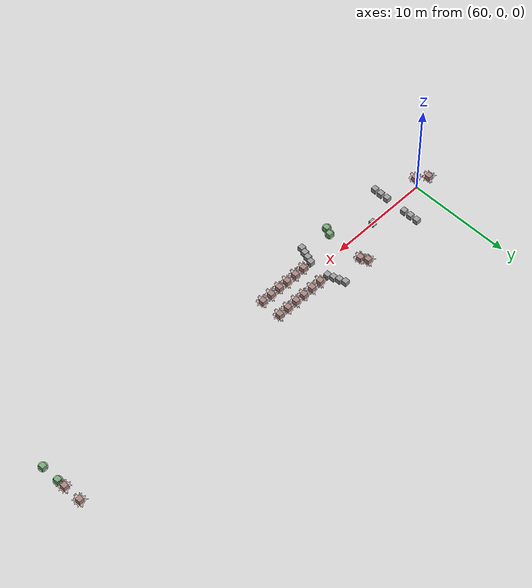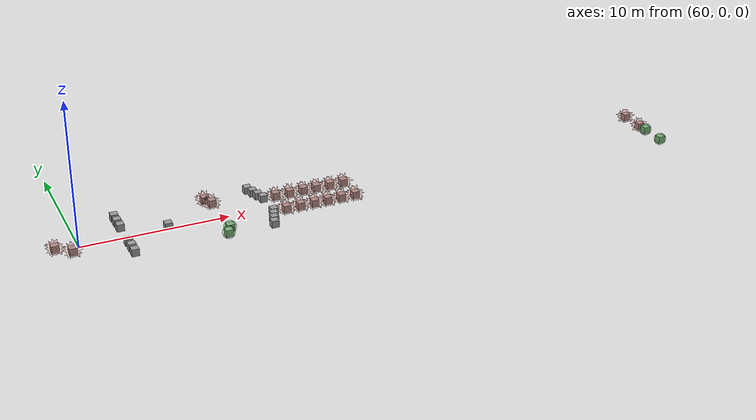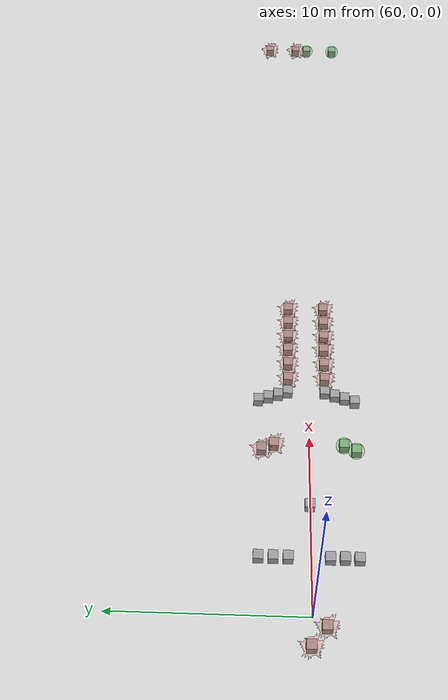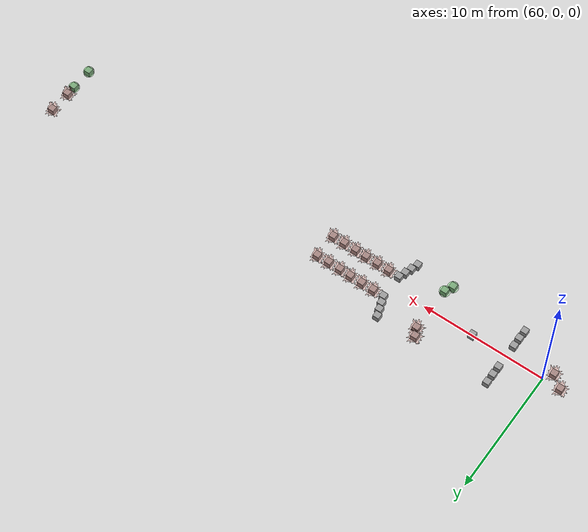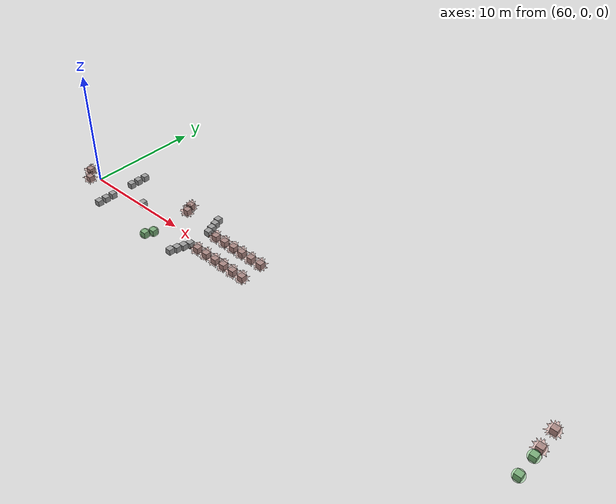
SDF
<sdf version="1.6">
 <world name="default">
  <model name="vis_cue_repel_3">
   <static>0</static>
   <pose>58.5128 0.092665 0.249993 -6e-06 6e-06 0</pose>
   <link name="vis_cue_repel">
    <inertial>
     <mass>1</mass>
     <inertia>
      <ixx>0.166667</ixx>
      <ixy>0</ixy>
      <ixz>0</ixz>
      <iyy>0.166667</iyy>
      <iyz>0</iyz>
      <izz>0.166667</izz>
     </inertia>
    </inertial>
    <collision name="collision"><geometry><box><size>0.5 0.5 0.5</size></box></geometry></collision>
    <visual name="box_visual">
     <geometry><box><size>0.5 0.5 0.5</size></box></geometry>
     <material>
      <script><name>Gazebo/Grey</name><uri>file://media/materials/scripts/gazebo.material</uri></script>
     </material>
    </visual>
    <visual name="cue_visual">
     <geometry><mesh><uri>model://repelling_cue_2.dae</uri><scale>0.85 0.85 0.85</scale></mesh></geometry>
     <material>
      <ambient>1 0.3 0.2 0.2</ambient>
      <diffuse>1 0.3 0.2 0.2</diffuse>
      <specular>1 0.3 0.2 0.5</specular>
      <emissive>0.5 0 0 0.1</emissive>
     </material>
    </visual>
   </link>
  </model>
  <model name="vis_cue_repel_4">
   <static>0</static>
   <pose>59.4747 -0.665958 0.249992 3e-06 -5e-06 0</pose>
   <link name="vis_cue_repel">
    <inertial>
     <mass>1</mass>
     <inertia>
      <ixx>0.166667</ixx>
      <ixy>0</ixy>
      <ixz>0</ixz>
      <iyy>0.166667</iyy>
      <iyz>0</iyz>
      <izz>0.166667</izz>
     </inertia>
    </inertial>
    <collision name="collision"><geometry><box><size>0.5 0.5 0.5</size></box></geometry></collision>
    <visual name="box_visual">
     <geometry><box><size>0.5 0.5 0.5</size></box></geometry>
     <material>
      <script><name>Gazebo/Grey</name><uri>file://media/materials/scripts/gazebo.material</uri></script>
     </material>
    </visual>
    <visual name="cue_visual">
     <geometry><mesh><uri>model://repelling_cue_2.dae</uri><scale>0.85 0.85 0.85</scale></mesh></geometry>
     <material>
      <ambient>1 0.3 0.2 0.2</ambient>
      <diffuse>1 0.3 0.2 0.2</diffuse>
      <specular>1 0.3 0.2 0.5</specular>
      <emissive>0.5 0 0 0.1</emissive>
     </material>
    </visual>
   </link>
  </model>
  <model name="trap_cont_1_repel_1">
   <static>0</static>
   <static>0</static>
   <link name="normal_cue_0::vis_cue_normal">
    <inertial>
     <mass>1</mass>
     <inertia>
      <ixx>0.166667</ixx>
      <ixy>0</ixy>
      <ixz>0</ixz>
      <iyy>0.166667</iyy>
      <iyz>0</iyz>
      <izz>0.166667</izz>
     </inertia>
    </inertial>
    <collision name="collision"><geometry><box><size>0.5 0.5 0.5</size></box></geometry></collision>
    <visual name="box_visual">
     <geometry><box><size>0.5 0.5 0.5</size></box></geometry>
     <material>
      <script><name>Gazebo/Grey</name><uri>file://media/materials/scripts/gazebo.material</uri></script>
     </material>
    </visual>
    <pose>0 -2.48 0.25 0 -0 0</pose>
   </link>
   <static>0</static>
   <link name="normal_cue_1::vis_cue_normal">
    <inertial>
     <mass>1</mass>
     <inertia>
      <ixx>0.166667</ixx>
      <ixy>0</ixy>
      <ixz>0</ixz>
      <iyy>0.166667</iyy>
      <iyz>0</iyz>
      <izz>0.166667</izz>
     </inertia>
    </inertial>
    <collision name="collision"><geometry><box><size>0.5 0.5 0.5</size></box></geometry></collision>
    <visual name="box_visual">
     <geometry><box><size>0.5 0.5 0.5</size></box></geometry>
     <material>
      <script><name>Gazebo/Grey</name><uri>file://media/materials/scripts/gazebo.material</uri></script>
     </material>
    </visual>
    <pose>0 1.01 0.25 0 -0 0</pose>
   </link>
   <static>0</static>
   <link name="normal_cue_2::vis_cue_normal">
    <inertial>
     <mass>1</mass>
     <inertia>
      <ixx>0.166667</ixx>
      <ixy>0</ixy>
      <ixz>0</ixz>
      <iyy>0.166667</iyy>
      <iyz>0</iyz>
      <izz>0.166667</izz>
     </inertia>
    </inertial>
    <collision name="collision"><geometry><box><size>0.5 0.5 0.5</size></box></geometry></collision>
    <visual name="box_visual">
     <geometry><box><size>0.5 0.5 0.5</size></box></geometry>
     <material>
      <script><name>Gazebo/Grey</name><uri>file://media/materials/scripts/gazebo.material</uri></script>
     </material>
    </visual>
    <pose>0 1.745 0.25 0 -0 0</pose>
   </link>
   <static>0</static>
   <link name="normal_cue_3::vis_cue_normal">
    <inertial>
     <mass>1</mass>
     <inertia>
      <ixx>0.166667</ixx>
      <ixy>0</ixy>
      <ixz>0</ixz>
      <iyy>0.166667</iyy>
      <iyz>0</iyz>
      <izz>0.166667</izz>
     </inertia>
    </inertial>
    <collision name="collision"><geometry><box><size>0.5 0.5 0.5</size></box></geometry></collision>
    <visual name="box_visual">
     <geometry><box><size>0.5 0.5 0.5</size></box></geometry>
     <material>
      <script><name>Gazebo/Grey</name><uri>file://media/materials/scripts/gazebo.material</uri></script>
     </material>
    </visual>
    <pose>0 2.48 0.25 0 -0 0</pose>
   </link>
   <pose>62.9652 0.149729 -1.8e-05 -6e-06 6e-06 0</pose>
  </model>
  <model name="trap_cont_2_ubias">
   <static>0</static>
   <static>0</static>
   <link name="attracting_cue_0::vis_cue_attract">
    <inertial>
     <mass>1</mass>
     <inertia>
      <ixx>0.166667</ixx>
      <ixy>0</ixy>
      <ixz>0</ixz>
      <iyy>0.166667</iyy>
      <iyz>0</iyz>
      <izz>0.166667</izz>
     </inertia>
    </inertial>
    <collision name="collision"><geometry><box><size>0.5 0.5 0.5</size></box></geometry></collision>
    <visual name="box_visual">
     <geometry><box><size>0.5 0.5 0.5</size></box></geometry>
     <material>
      <script><name>Gazebo/Grey</name><uri>file://media/materials/scripts/gazebo.material</uri></script>
     </material>
    </visual>
    <visual name="cue_visual">
     <geometry>
      <mesh><uri>model://vis_cue_attract/meshes/sphere.stl</uri><scale>0.85 0.85 0.85</scale></mesh>
     </geometry>
     <material>
      <ambient>0 1 0 0.15</ambient>
      <diffuse>0 1 0 0.15</diffuse>
      <specular>0 1 0 0.15</specular>
      <emissive>0 0 0 0</emissive>
     </material>
    </visual>
    <pose>0 -2.48 0.25 0 -0 0</pose>
   </link>
   <static>0</static>
   <link name="attracting_cue_1::vis_cue_attract">
    <inertial>
     <mass>1</mass>
     <inertia>
      <ixx>0.166667</ixx>
      <ixy>0</ixy>
      <ixz>0</ixz>
      <iyy>0.166667</iyy>
      <iyz>0</iyz>
      <izz>0.166667</izz>
     </inertia>
    </inertial>
    <collision name="collision"><geometry><box><size>0.5 0.5 0.5</size></box></geometry></collision>
    <visual name="box_visual">
     <geometry><box><size>0.5 0.5 0.5</size></box></geometry>
     <material>
      <script><name>Gazebo/Grey</name><uri>file://media/materials/scripts/gazebo.material</uri></script>
     </material>
    </visual>
    <visual name="cue_visual">
     <geometry>
      <mesh><uri>model://vis_cue_attract/meshes/sphere.stl</uri><scale>0.85 0.85 0.85</scale></mesh>
     </geometry>
     <material>
      <ambient>0 1 0 0.15</ambient>
      <diffuse>0 1 0 0.15</diffuse>
      <specular>0 1 0 0.15</specular>
      <emissive>0 0 0 0</emissive>
     </material>
    </visual>
    <pose>0.3 -1.845 0.25 0 -0 0</pose>
   </link>
   <static>0</static>
   <link name="repelling_cue_0::vis_cue_repel">
    <inertial>
     <mass>1</mass>
     <inertia>
      <ixx>0.166667</ixx>
      <ixy>0</ixy>
      <ixz>0</ixz>
      <iyy>0.166667</iyy>
      <iyz>0</iyz>
      <izz>0.166667</izz>
     </inertia>
    </inertial>
    <collision name="collision"><geometry><box><size>0.5 0.5 0.5</size></box></geometry></collision>
    <visual name="box_visual">
     <geometry><box><size>0.5 0.5 0.5</size></box></geometry>
     <material>
      <script><name>Gazebo/Grey</name><uri>file://media/materials/scripts/gazebo.material</uri></script>
     </material>
    </visual>
    <visual name="cue_visual">
     <geometry><mesh><uri>model://repelling_cue_2.dae</uri><scale>0.85 0.85 0.85</scale></mesh></geometry>
     <material>
      <ambient>1 0.3 0.2 0.2</ambient>
      <diffuse>1 0.3 0.2 0.2</diffuse>
      <specular>1 0.3 0.2 0.5</specular>
      <emissive>0.5 0 0 0.1</emissive>
     </material>
    </visual>
    <pose>0.3 1.845 0.25 0 -0 0</pose>
   </link>
   <static>0</static>
   <link name="repelling_cue_1::vis_cue_repel">
    <inertial>
     <mass>1</mass>
     <inertia>
      <ixx>0.166667</ixx>
      <ixy>0</ixy>
      <ixz>0</ixz>
      <iyy>0.166667</iyy>
      <iyz>0</iyz>
      <izz>0.166667</izz>
     </inertia>
    </inertial>
    <collision name="collision"><geometry><box><size>0.5 0.5 0.5</size></box></geometry></collision>
    <visual name="box_visual">
     <geometry><box><size>0.5 0.5 0.5</size></box></geometry>
     <material>
      <script><name>Gazebo/Grey</name><uri>file://media/materials/scripts/gazebo.material</uri></script>
     </material>
    </visual>
    <visual name="cue_visual">
     <geometry><mesh><uri>model://repelling_cue_2.dae</uri><scale>0.85 0.85 0.85</scale></mesh></geometry>
     <material>
      <ambient>1 0.3 0.2 0.2</ambient>
      <diffuse>1 0.3 0.2 0.2</diffuse>
      <specular>1 0.3 0.2 0.5</specular>
      <emissive>0.5 0 0 0.1</emissive>
     </material>
    </visual>
    <pose>0 2.48 0.25 0 -0 0</pose>
   </link>
   <pose>69.1149 0.054682 1.1e-05 7e-06 -7e-06 0</pose>
  </model>
  <model name="vis_cue_normal_9">
   <static>0</static>
   <pose>62.976 -1.62281 0.249994 7e-06 -7e-06 0</pose>
   <link name="vis_cue_normal">
    <inertial>
     <mass>1</mass>
     <inertia>
      <ixx>0.166667</ixx>
      <ixy>0</ixy>
      <ixz>0</ixz>
      <iyy>0.166667</iyy>
      <iyz>0</iyz>
      <izz>0.166667</izz>
     </inertia>
    </inertial>
    <collision name="collision"><geometry><box><size>0.5 0.5 0.5</size></box></geometry></collision>
    <visual name="box_visual">
     <geometry><box><size>0.5 0.5 0.5</size></box></geometry>
     <material>
      <script><name>Gazebo/Grey</name><uri>file://media/materials/scripts/gazebo.material</uri></script>
     </material>
    </visual>
   </link>
  </model>
  <model name="vis_cue_normal_10">
   <static>0</static>
   <pose>62.9647 -0.89842 0.249997 -6e-06 6e-06 0</pose>
   <link name="vis_cue_normal">
    <inertial>
     <mass>1</mass>
     <inertia>
      <ixx>0.166667</ixx>
      <ixy>0</ixy>
      <ixz>0</ixz>
      <iyy>0.166667</iyy>
      <iyz>0</iyz>
      <izz>0.166667</izz>
     </inertia>
    </inertial>
    <collision name="collision"><geometry><box><size>0.5 0.5 0.5</size></box></geometry></collision>
    <visual name="box_visual">
     <geometry><box><size>0.5 0.5 0.5</size></box></geometry>
     <material>
      <script><name>Gazebo/Grey</name><uri>file://media/materials/scripts/gazebo.material</uri></script>
     </material>
    </visual>
   </link>
  </model>
  <model name="vis_cue_normal_11">
   <static>0</static>
   <pose>65.8524 0.063118 0.249997 -6e-06 6e-06 0</pose>
   <link name="vis_cue_normal">
    <inertial>
     <mass>1</mass>
     <inertia>
      <ixx>0.166667</ixx>
      <ixy>0</ixy>
      <ixz>0</ixz>
      <iyy>0.166667</iyy>
      <iyz>0</iyz>
      <izz>0.166667</izz>
     </inertia>
    </inertial>
    <collision name="collision"><geometry><box><size>0.5 0.5 0.5</size></box></geometry></collision>
    <visual name="box_visual">
     <geometry><box><size>0.5 0.5 0.5</size></box></geometry>
     <material>
      <script><name>Gazebo/Grey</name><uri>file://media/materials/scripts/gazebo.material</uri></script>
     </material>
    </visual>
   </link>
  </model>
  <model name="trap_gate">
   <static>1</static>
   <static>0</static>
   <link name="normal_cue_0::vis_cue_normal">
    <inertial>
     <mass>1</mass>
     <inertia>
      <ixx>0.166667</ixx>
      <ixy>0</ixy>
      <ixz>0</ixz>
      <iyy>0.166667</iyy>
      <iyz>0</iyz>
      <izz>0.166667</izz>
     </inertia>
    </inertial>
    <collision name="collision"><geometry><box><size>0.5 0.5 0.5</size></box></geometry></collision>
    <visual name="box_visual">
     <geometry><box><size>0.5 0.5 0.5</size></box></geometry>
     <material>
      <script><name>Gazebo/Grey</name><uri>file://media/materials/scripts/gazebo.material</uri></script>
     </material>
    </visual>
    <pose>0 -2.6 0.25 0 -0 0</pose>
   </link>
   <static>0</static>
   <link name="normal_cue_1::vis_cue_normal">
    <inertial>
     <mass>1</mass>
     <inertia>
      <ixx>0.166667</ixx>
      <ixy>0</ixy>
      <ixz>0</ixz>
      <iyy>0.166667</iyy>
      <iyz>0</iyz>
      <izz>0.166667</izz>
     </inertia>
    </inertial>
    <collision name="collision"><geometry><box><size>0.5 0.5 0.5</size></box></geometry></collision>
    <visual name="box_visual">
     <geometry><box><size>0.5 0.5 0.5</size></box></geometry>
     <material>
      <script><name>Gazebo/Grey</name><uri>file://media/materials/scripts/gazebo.material</uri></script>
     </material>
    </visual>
    <pose>0.19 -2.06 0.25 0 -0 0</pose>
   </link>
   <static>0</static>
   <link name="normal_cue_2::vis_cue_normal">
    <inertial>
     <mass>1</mass>
     <inertia>
      <ixx>0.166667</ixx>
      <ixy>0</ixy>
      <ixz>0</ixz>
      <iyy>0.166667</iyy>
      <iyz>0</iyz>
      <izz>0.166667</izz>
     </inertia>
    </inertial>
    <collision name="collision"><geometry><box><size>0.5 0.5 0.5</size></box></geometry></collision>
    <visual name="box_visual">
     <geometry><box><size>0.5 0.5 0.5</size></box></geometry>
     <material>
      <script><name>Gazebo/Grey</name><uri>file://media/materials/scripts/gazebo.material</uri></script>
     </material>
    </visual>
    <pose>0.37 -1.53 0.25 0 -0 0</pose>
   </link>
   <static>0</static>
   <link name="normal_cue_3::vis_cue_normal">
    <inertial>
     <mass>1</mass>
     <inertia>
      <ixx>0.166667</ixx>
      <ixy>0</ixy>
      <ixz>0</ixz>
      <iyy>0.166667</iyy>
      <iyz>0</iyz>
      <izz>0.166667</izz>
     </inertia>
    </inertial>
    <collision name="collision"><geometry><box><size>0.5 0.5 0.5</size></box></geometry></collision>
    <visual name="box_visual">
     <geometry><box><size>0.5 0.5 0.5</size></box></geometry>
     <material>
      <script><name>Gazebo/Grey</name><uri>file://media/materials/scripts/gazebo.material</uri></script>
     </material>
    </visual>
    <pose>0.56 -1 0.25 0 -0 0</pose>
   </link>
   <static>0</static>
   <link name="normal_cue_4::vis_cue_normal">
    <inertial>
     <mass>1</mass>
     <inertia>
      <ixx>0.166667</ixx>
      <ixy>0</ixy>
      <ixz>0</ixz>
      <iyy>0.166667</iyy>
      <iyz>0</iyz>
      <izz>0.166667</izz>
     </inertia>
    </inertial>
    <collision name="collision"><geometry><box><size>0.5 0.5 0.5</size></box></geometry></collision>
    <visual name="box_visual">
     <geometry><box><size>0.5 0.5 0.5</size></box></geometry>
     <material>
      <script><name>Gazebo/Grey</name><uri>file://media/materials/scripts/gazebo.material</uri></script>
     </material>
    </visual>
    <pose>0.56 1 0.25 0 -0 0</pose>
   </link>
   <static>0</static>
   <link name="normal_cue_5::vis_cue_normal">
    <inertial>
     <mass>1</mass>
     <inertia>
      <ixx>0.166667</ixx>
      <ixy>0</ixy>
      <ixz>0</ixz>
      <iyy>0.166667</iyy>
      <iyz>0</iyz>
      <izz>0.166667</izz>
     </inertia>
    </inertial>
    <collision name="collision"><geometry><box><size>0.5 0.5 0.5</size></box></geometry></collision>
    <visual name="box_visual">
     <geometry><box><size>0.5 0.5 0.5</size></box></geometry>
     <material>
      <script><name>Gazebo/Grey</name><uri>file://media/materials/scripts/gazebo.material</uri></script>
     </material>
    </visual>
    <pose>0.37 1.53 0.25 0 -0 0</pose>
   </link>
   <static>0</static>
   <link name="normal_cue_6::vis_cue_normal">
    <inertial>
     <mass>1</mass>
     <inertia>
      <ixx>0.166667</ixx>
      <ixy>0</ixy>
      <ixz>0</ixz>
      <iyy>0.166667</iyy>
      <iyz>0</iyz>
      <izz>0.166667</izz>
     </inertia>
    </inertial>
    <collision name="collision"><geometry><box><size>0.5 0.5 0.5</size></box></geometry></collision>
    <visual name="box_visual">
     <geometry><box><size>0.5 0.5 0.5</size></box></geometry>
     <material>
      <script><name>Gazebo/Grey</name><uri>file://media/materials/scripts/gazebo.material</uri></script>
     </material>
    </visual>
    <pose>0.19 2.06 0.25 0 -0 0</pose>
   </link>
   <static>0</static>
   <link name="normal_cue_7::vis_cue_normal">
    <inertial>
     <mass>1</mass>
     <inertia>
      <ixx>0.166667</ixx>
      <ixy>0</ixy>
      <ixz>0</ixz>
      <iyy>0.166667</iyy>
      <iyz>0</iyz>
      <izz>0.166667</izz>
     </inertia>
    </inertial>
    <collision name="collision"><geometry><box><size>0.5 0.5 0.5</size></box></geometry></collision>
    <visual name="box_visual">
     <geometry><box><size>0.5 0.5 0.5</size></box></geometry>
     <material>
      <script><name>Gazebo/Grey</name><uri>file://media/materials/scripts/gazebo.material</uri></script>
     </material>
    </visual>
    <pose>0 2.6 0.25 0 -0 0</pose>
   </link>
   <pose>72.2127 0.15245 0 0 -0 0</pose>
  </model>
  <model name="trap_discr_2_ubias">
   <static>0</static>
   <static>0</static>
   <link name="attract_cue_0::vis_cue_attract">
    <inertial>
     <mass>1</mass>
     <inertia>
      <ixx>0.166667</ixx>
      <ixy>0</ixy>
      <ixz>0</ixz>
      <iyy>0.166667</iyy>
      <iyz>0</iyz>
      <izz>0.166667</izz>
     </inertia>
    </inertial>
    <collision name="collision"><geometry><box><size>0.5 0.5 0.5</size></box></geometry></collision>
    <visual name="box_visual">
     <geometry><box><size>0.5 0.5 0.5</size></box></geometry>
     <material>
      <script><name>Gazebo/Grey</name><uri>file://media/materials/scripts/gazebo.material</uri></script>
     </material>
    </visual>
    <visual name="cue_visual">
     <geometry>
      <mesh><uri>model://vis_cue_attract/meshes/sphere.stl</uri><scale>0.85 0.85 0.85</scale></mesh>
     </geometry>
     <material>
      <ambient>0 1 0 0.15</ambient>
      <diffuse>0 1 0 0.15</diffuse>
      <specular>0 1 0 0.15</specular>
      <emissive>0 0 0 0</emissive>
     </material>
    </visual>
    <pose>0 -2.2 0.25 0 -0 0</pose>
   </link>
   <static>0</static>
   <link name="attract_cue_1::vis_cue_attract">
    <inertial>
     <mass>1</mass>
     <inertia>
      <ixx>0.166667</ixx>
      <ixy>0</ixy>
      <ixz>0</ixz>
      <iyy>0.166667</iyy>
      <iyz>0</iyz>
      <izz>0.166667</izz>
     </inertia>
    </inertial>
    <collision name="collision"><geometry><box><size>0.5 0.5 0.5</size></box></geometry></collision>
    <visual name="box_visual">
     <geometry><box><size>0.5 0.5 0.5</size></box></geometry>
     <material>
      <script><name>Gazebo/Grey</name><uri>file://media/materials/scripts/gazebo.material</uri></script>
     </material>
    </visual>
    <visual name="cue_visual">
     <geometry>
      <mesh><uri>model://vis_cue_attract/meshes/sphere.stl</uri><scale>0.85 0.85 0.85</scale></mesh>
     </geometry>
     <material>
      <ambient>0 1 0 0.15</ambient>
      <diffuse>0 1 0 0.15</diffuse>
      <specular>0 1 0 0.15</specular>
      <emissive>0 0 0 0</emissive>
     </material>
    </visual>
    <pose>0 -0.39 0.25 0 -0 0</pose>
   </link>
   <static>0</static>
   <link name="repel_cue_2::vis_cue_repel">
    <inertial>
     <mass>1</mass>
     <inertia>
      <ixx>0.166667</ixx>
      <ixy>0</ixy>
      <ixz>0</ixz>
      <iyy>0.166667</iyy>
      <iyz>0</iyz>
      <izz>0.166667</izz>
     </inertia>
    </inertial>
    <collision name="collision"><geometry><box><size>0.5 0.5 0.5</size></box></geometry></collision>
    <visual name="box_visual">
     <geometry><box><size>0.5 0.5 0.5</size></box></geometry>
     <material>
      <script><name>Gazebo/Grey</name><uri>file://media/materials/scripts/gazebo.material</uri></script>
     </material>
    </visual>
    <visual name="cue_visual">
     <geometry><mesh><uri>model://repelling_cue_2.dae</uri><scale>0.85 0.85 0.85</scale></mesh></geometry>
     <material>
      <ambient>1 0.3 0.2 0.2</ambient>
      <diffuse>1 0.3 0.2 0.2</diffuse>
      <specular>1 0.3 0.2 0.5</specular>
      <emissive>0.5 0 0 0.1</emissive>
     </material>
    </visual>
    <pose>0 2.2 0.25 0 -0 0</pose>
   </link>
   <static>0</static>
   <link name="repel_cue_3::vis_cue_repel">
    <inertial>
     <mass>1</mass>
     <inertia>
      <ixx>0.166667</ixx>
      <ixy>0</ixy>
      <ixz>0</ixz>
      <iyy>0.166667</iyy>
      <iyz>0</iyz>
      <izz>0.166667</izz>
     </inertia>
    </inertial>
    <collision name="collision"><geometry><box><size>0.5 0.5 0.5</size></box></geometry></collision>
    <visual name="box_visual">
     <geometry><box><size>0.5 0.5 0.5</size></box></geometry>
     <material>
      <script><name>Gazebo/Grey</name><uri>file://media/materials/scripts/gazebo.material</uri></script>
     </material>
    </visual>
    <visual name="cue_visual">
     <geometry><mesh><uri>model://repelling_cue_2.dae</uri><scale>0.85 0.85 0.85</scale></mesh></geometry>
     <material>
      <ambient>1 0.3 0.2 0.2</ambient>
      <diffuse>1 0.3 0.2 0.2</diffuse>
      <specular>1 0.3 0.2 0.5</specular>
      <emissive>0.5 0 0 0.1</emissive>
     </material>
    </visual>
    <pose>0 0.39 0.25 0 -0 0</pose>
   </link>
   <pose>102.578 0.125788 -2e-05 -7e-06 7e-06 0</pose>
  </model>
  <model name="trap_c_3_r">
   <static>1</static>
   <static>0</static>
   <link name="repelling_cue_0::vis_cue_repel">
    <inertial>
     <mass>1</mass>
     <inertia>
      <ixx>0.166667</ixx>
      <ixy>0</ixy>
      <ixz>0</ixz>
      <iyy>0.166667</iyy>
      <iyz>0</iyz>
      <izz>0.166667</izz>
     </inertia>
    </inertial>
    <collision name="collision"><geometry><box><size>0.5 0.5 0.5</size></box></geometry></collision>
    <visual name="box_visual">
     <geometry><box><size>0.5 0.5 0.5</size></box></geometry>
     <material>
      <script><name>Gazebo/Grey</name><uri>file://media/materials/scripts/gazebo.material</uri></script>
     </material>
    </visual>
    <visual name="cue_visual">
     <geometry><mesh><uri>model://repelling_cue_2.dae</uri><scale>0.85 0.85 0.85</scale></mesh></geometry>
     <material>
      <ambient>1 0.3 0.2 0.2</ambient>
      <diffuse>1 0.3 0.2 0.2</diffuse>
      <specular>1 0.3 0.2 0.5</specular>
      <emissive>0.5 0 0 0.1</emissive>
     </material>
    </visual>
    <pose>0 -1 0.25 0 -0 0</pose>
   </link>
   <static>0</static>
   <link name="repelling_cue_1::vis_cue_repel">
    <inertial>
     <mass>1</mass>
     <inertia>
      <ixx>0.166667</ixx>
      <ixy>0</ixy>
      <ixz>0</ixz>
      <iyy>0.166667</iyy>
      <iyz>0</iyz>
      <izz>0.166667</izz>
     </inertia>
    </inertial>
    <collision name="collision"><geometry><box><size>0.5 0.5 0.5</size></box></geometry></collision>
    <visual name="box_visual">
     <geometry><box><size>0.5 0.5 0.5</size></box></geometry>
     <material>
      <script><name>Gazebo/Grey</name><uri>file://media/materials/scripts/gazebo.material</uri></script>
     </material>
    </visual>
    <visual name="cue_visual">
     <geometry><mesh><uri>model://repelling_cue_2.dae</uri><scale>0.85 0.85 0.85</scale></mesh></geometry>
     <material>
      <ambient>1 0.3 0.2 0.2</ambient>
      <diffuse>1 0.3 0.2 0.2</diffuse>
      <specular>1 0.3 0.2 0.5</specular>
      <emissive>0.5 0 0 0.1</emissive>
     </material>
    </visual>
    <pose>0 1 0.25 0 -0 0</pose>
   </link>
   <static>0</static>
   <link name="repelling_cue_2::vis_cue_repel">
    <inertial>
     <mass>1</mass>
     <inertia>
      <ixx>0.166667</ixx>
      <ixy>0</ixy>
      <ixz>0</ixz>
      <iyy>0.166667</iyy>
      <iyz>0</iyz>
      <izz>0.166667</izz>
     </inertia>
    </inertial>
    <collision name="collision"><geometry><box><size>0.5 0.5 0.5</size></box></geometry></collision>
    <visual name="box_visual">
     <geometry><box><size>0.5 0.5 0.5</size></box></geometry>
     <material>
      <script><name>Gazebo/Grey</name><uri>file://media/materials/scripts/gazebo.material</uri></script>
     </material>
    </visual>
    <visual name="cue_visual">
     <geometry><mesh><uri>model://repelling_cue_2.dae</uri><scale>0.85 0.85 0.85</scale></mesh></geometry>
     <material>
      <ambient>1 0.3 0.2 0.2</ambient>
      <diffuse>1 0.3 0.2 0.2</diffuse>
      <specular>1 0.3 0.2 0.5</specular>
      <emissive>0.5 0 0 0.1</emissive>
     </material>
    </visual>
    <pose>1 -1 0.25 0 -0 0</pose>
   </link>
   <static>0</static>
   <link name="repelling_cue_3::vis_cue_repel">
    <inertial>
     <mass>1</mass>
     <inertia>
      <ixx>0.166667</ixx>
      <ixy>0</ixy>
      <ixz>0</ixz>
      <iyy>0.166667</iyy>
      <iyz>0</iyz>
      <izz>0.166667</izz>
     </inertia>
    </inertial>
    <collision name="collision"><geometry><box><size>0.5 0.5 0.5</size></box></geometry></collision>
    <visual name="box_visual">
     <geometry><box><size>0.5 0.5 0.5</size></box></geometry>
     <material>
      <script><name>Gazebo/Grey</name><uri>file://media/materials/scripts/gazebo.material</uri></script>
     </material>
    </visual>
    <visual name="cue_visual">
     <geometry><mesh><uri>model://repelling_cue_2.dae</uri><scale>0.85 0.85 0.85</scale></mesh></geometry>
     <material>
      <ambient>1 0.3 0.2 0.2</ambient>
      <diffuse>1 0.3 0.2 0.2</diffuse>
      <specular>1 0.3 0.2 0.5</specular>
      <emissive>0.5 0 0 0.1</emissive>
     </material>
    </visual>
    <pose>1 1 0.25 0 -0 0</pose>
   </link>
   <static>0</static>
   <link name="repelling_cue_4::vis_cue_repel">
    <inertial>
     <mass>1</mass>
     <inertia>
      <ixx>0.166667</ixx>
      <ixy>0</ixy>
      <ixz>0</ixz>
      <iyy>0.166667</iyy>
      <iyz>0</iyz>
      <izz>0.166667</izz>
     </inertia>
    </inertial>
    <collision name="collision"><geometry><box><size>0.5 0.5 0.5</size></box></geometry></collision>
    <visual name="box_visual">
     <geometry><box><size>0.5 0.5 0.5</size></box></geometry>
     <material>
      <script><name>Gazebo/Grey</name><uri>file://media/materials/scripts/gazebo.material</uri></script>
     </material>
    </visual>
    <visual name="cue_visual">
     <geometry><mesh><uri>model://repelling_cue_2.dae</uri><scale>0.85 0.85 0.85</scale></mesh></geometry>
     <material>
      <ambient>1 0.3 0.2 0.2</ambient>
      <diffuse>1 0.3 0.2 0.2</diffuse>
      <specular>1 0.3 0.2 0.5</specular>
      <emissive>0.5 0 0 0.1</emissive>
     </material>
    </visual>
    <pose>2 -1 0.25 0 -0 0</pose>
   </link>
   <static>0</static>
   <link name="repelling_cue_5::vis_cue_repel">
    <inertial>
     <mass>1</mass>
     <inertia>
      <ixx>0.166667</ixx>
      <ixy>0</ixy>
      <ixz>0</ixz>
      <iyy>0.166667</iyy>
      <iyz>0</iyz>
      <izz>0.166667</izz>
     </inertia>
    </inertial>
    <collision name="collision"><geometry><box><size>0.5 0.5 0.5</size></box></geometry></collision>
    <visual name="box_visual">
     <geometry><box><size>0.5 0.5 0.5</size></box></geometry>
     <material>
      <script><name>Gazebo/Grey</name><uri>file://media/materials/scripts/gazebo.material</uri></script>
     </material>
    </visual>
    <visual name="cue_visual">
     <geometry><mesh><uri>model://repelling_cue_2.dae</uri><scale>0.85 0.85 0.85</scale></mesh></geometry>
     <material>
      <ambient>1 0.3 0.2 0.2</ambient>
      <diffuse>1 0.3 0.2 0.2</diffuse>
      <specular>1 0.3 0.2 0.5</specular>
      <emissive>0.5 0 0 0.1</emissive>
     </material>
    </visual>
    <pose>2 1 0.25 0 -0 0</pose>
   </link>
   <pose>73.6711 0.140022 0 0 -0 0</pose>
  </model>
  <model name="trap_c_3_r_0">
   <static>1</static>
   <static>0</static>
   <link name="repelling_cue_0::vis_cue_repel">
    <inertial>
     <mass>1</mass>
     <inertia>
      <ixx>0.166667</ixx>
      <ixy>0</ixy>
      <ixz>0</ixz>
      <iyy>0.166667</iyy>
      <iyz>0</iyz>
      <izz>0.166667</izz>
     </inertia>
    </inertial>
    <collision name="collision"><geometry><box><size>0.5 0.5 0.5</size></box></geometry></collision>
    <visual name="box_visual">
     <geometry><box><size>0.5 0.5 0.5</size></box></geometry>
     <material>
      <script><name>Gazebo/Grey</name><uri>file://media/materials/scripts/gazebo.material</uri></script>
     </material>
    </visual>
    <visual name="cue_visual">
     <geometry><mesh><uri>model://repelling_cue_2.dae</uri><scale>0.85 0.85 0.85</scale></mesh></geometry>
     <material>
      <ambient>1 0.3 0.2 0.2</ambient>
      <diffuse>1 0.3 0.2 0.2</diffuse>
      <specular>1 0.3 0.2 0.5</specular>
      <emissive>0.5 0 0 0.1</emissive>
     </material>
    </visual>
    <pose>0 -1 0.25 0 -0 0</pose>
   </link>
   <static>0</static>
   <link name="repelling_cue_1::vis_cue_repel">
    <inertial>
     <mass>1</mass>
     <inertia>
      <ixx>0.166667</ixx>
      <ixy>0</ixy>
      <ixz>0</ixz>
      <iyy>0.166667</iyy>
      <iyz>0</iyz>
      <izz>0.166667</izz>
     </inertia>
    </inertial>
    <collision name="collision"><geometry><box><size>0.5 0.5 0.5</size></box></geometry></collision>
    <visual name="box_visual">
     <geometry><box><size>0.5 0.5 0.5</size></box></geometry>
     <material>
      <script><name>Gazebo/Grey</name><uri>file://media/materials/scripts/gazebo.material</uri></script>
     </material>
    </visual>
    <visual name="cue_visual">
     <geometry><mesh><uri>model://repelling_cue_2.dae</uri><scale>0.85 0.85 0.85</scale></mesh></geometry>
     <material>
      <ambient>1 0.3 0.2 0.2</ambient>
      <diffuse>1 0.3 0.2 0.2</diffuse>
      <specular>1 0.3 0.2 0.5</specular>
      <emissive>0.5 0 0 0.1</emissive>
     </material>
    </visual>
    <pose>0 1 0.25 0 -0 0</pose>
   </link>
   <static>0</static>
   <link name="repelling_cue_2::vis_cue_repel">
    <inertial>
     <mass>1</mass>
     <inertia>
      <ixx>0.166667</ixx>
      <ixy>0</ixy>
      <ixz>0</ixz>
      <iyy>0.166667</iyy>
      <iyz>0</iyz>
      <izz>0.166667</izz>
     </inertia>
    </inertial>
    <collision name="collision"><geometry><box><size>0.5 0.5 0.5</size></box></geometry></collision>
    <visual name="box_visual">
     <geometry><box><size>0.5 0.5 0.5</size></box></geometry>
     <material>
      <script><name>Gazebo/Grey</name><uri>file://media/materials/scripts/gazebo.material</uri></script>
     </material>
    </visual>
    <visual name="cue_visual">
     <geometry><mesh><uri>model://repelling_cue_2.dae</uri><scale>0.85 0.85 0.85</scale></mesh></geometry>
     <material>
      <ambient>1 0.3 0.2 0.2</ambient>
      <diffuse>1 0.3 0.2 0.2</diffuse>
      <specular>1 0.3 0.2 0.5</specular>
      <emissive>0.5 0 0 0.1</emissive>
     </material>
    </visual>
    <pose>1 -1 0.25 0 -0 0</pose>
   </link>
   <static>0</static>
   <link name="repelling_cue_3::vis_cue_repel">
    <inertial>
     <mass>1</mass>
     <inertia>
      <ixx>0.166667</ixx>
      <ixy>0</ixy>
      <ixz>0</ixz>
      <iyy>0.166667</iyy>
      <iyz>0</iyz>
      <izz>0.166667</izz>
     </inertia>
    </inertial>
    <collision name="collision"><geometry><box><size>0.5 0.5 0.5</size></box></geometry></collision>
    <visual name="box_visual">
     <geometry><box><size>0.5 0.5 0.5</size></box></geometry>
     <material>
      <script><name>Gazebo/Grey</name><uri>file://media/materials/scripts/gazebo.material</uri></script>
     </material>
    </visual>
    <visual name="cue_visual">
     <geometry><mesh><uri>model://repelling_cue_2.dae</uri><scale>0.85 0.85 0.85</scale></mesh></geometry>
     <material>
      <ambient>1 0.3 0.2 0.2</ambient>
      <diffuse>1 0.3 0.2 0.2</diffuse>
      <specular>1 0.3 0.2 0.5</specular>
      <emissive>0.5 0 0 0.1</emissive>
     </material>
    </visual>
    <pose>1 1 0.25 0 -0 0</pose>
   </link>
   <static>0</static>
   <link name="repelling_cue_4::vis_cue_repel">
    <inertial>
     <mass>1</mass>
     <inertia>
      <ixx>0.166667</ixx>
      <ixy>0</ixy>
      <ixz>0</ixz>
      <iyy>0.166667</iyy>
      <iyz>0</iyz>
      <izz>0.166667</izz>
     </inertia>
    </inertial>
    <collision name="collision"><geometry><box><size>0.5 0.5 0.5</size></box></geometry></collision>
    <visual name="box_visual">
     <geometry><box><size>0.5 0.5 0.5</size></box></geometry>
     <material>
      <script><name>Gazebo/Grey</name><uri>file://media/materials/scripts/gazebo.material</uri></script>
     </material>
    </visual>
    <visual name="cue_visual">
     <geometry><mesh><uri>model://repelling_cue_2.dae</uri><scale>0.85 0.85 0.85</scale></mesh></geometry>
     <material>
      <ambient>1 0.3 0.2 0.2</ambient>
      <diffuse>1 0.3 0.2 0.2</diffuse>
      <specular>1 0.3 0.2 0.5</specular>
      <emissive>0.5 0 0 0.1</emissive>
     </material>
    </visual>
    <pose>2 -1 0.25 0 -0 0</pose>
   </link>
   <static>0</static>
   <link name="repelling_cue_5::vis_cue_repel">
    <inertial>
     <mass>1</mass>
     <inertia>
      <ixx>0.166667</ixx>
      <ixy>0</ixy>
      <ixz>0</ixz>
      <iyy>0.166667</iyy>
      <iyz>0</iyz>
      <izz>0.166667</izz>
     </inertia>
    </inertial>
    <collision name="collision"><geometry><box><size>0.5 0.5 0.5</size></box></geometry></collision>
    <visual name="box_visual">
     <geometry><box><size>0.5 0.5 0.5</size></box></geometry>
     <material>
      <script><name>Gazebo/Grey</name><uri>file://media/materials/scripts/gazebo.material</uri></script>
     </material>
    </visual>
    <visual name="cue_visual">
     <geometry><mesh><uri>model://repelling_cue_2.dae</uri><scale>0.85 0.85 0.85</scale></mesh></geometry>
     <material>
      <ambient>1 0.3 0.2 0.2</ambient>
      <diffuse>1 0.3 0.2 0.2</diffuse>
      <specular>1 0.3 0.2 0.5</specular>
      <emissive>0.5 0 0 0.1</emissive>
     </material>
    </visual>
    <pose>2 1 0.25 0 -0 0</pose>
   </link>
   <pose>76.6076 0.119373 0 0 -0 0</pose>
  </model>
 </world>
</sdf>
